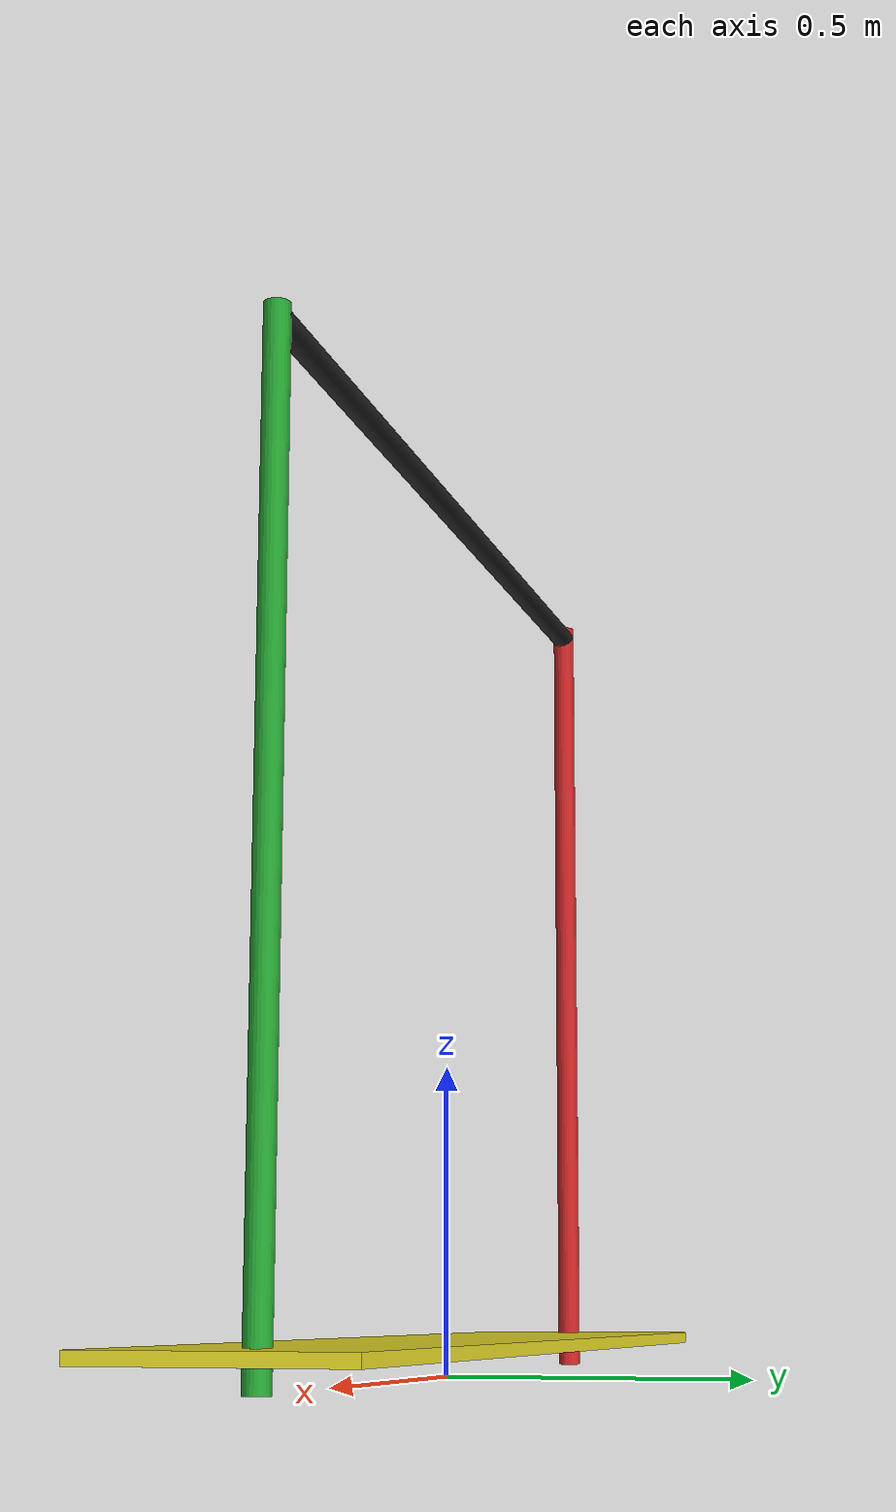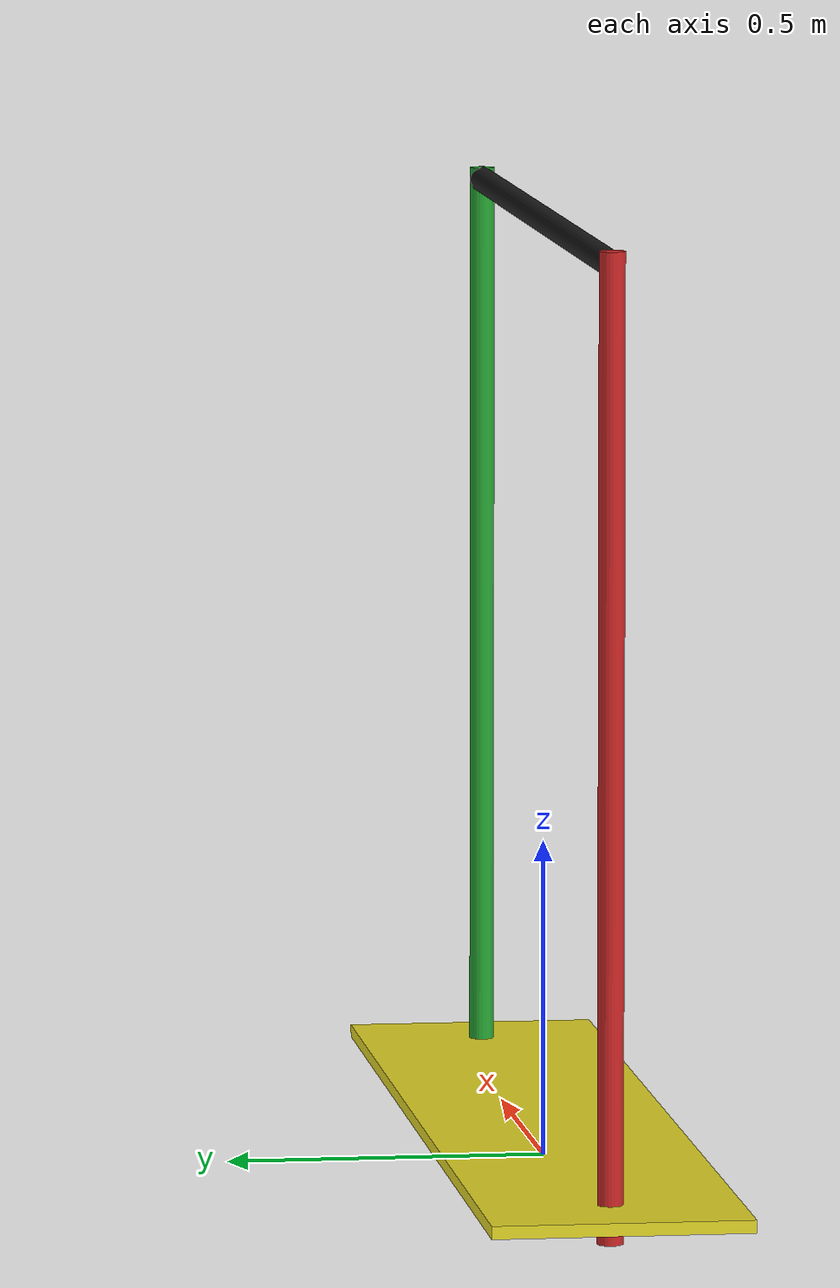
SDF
<?xml version="1.0" ?>

<sdf version="1.5">
  <model name="gate">
    <static>true</static>
    <link name="link">

      <collision name="left">
        <pose>-0.75 0 0.75 0 0 0</pose>
        <geometry>
          <cylinder>
            <radius>0.02</radius>
            <length>1.5</length>
          </cylinder>
        </geometry>
      </collision>

      <collision name="right">
        <pose>0.75 0 0.75 0 0 0</pose>
        <geometry>
          <cylinder>
            <radius>0.02</radius>
            <length>1.5</length>
          </cylinder>
        </geometry>
      </collision>

      <collision name="top">
        <pose>0 0 1.48 0 1.57 0</pose>
        <geometry>
          <cylinder>
            <radius>0.02</radius>
            <length>1.5</length>
          </cylinder>
        </geometry>
      </collision>

      <visual name="left">
        <cast_shadows>false</cast_shadows>
        <pose>-0.75 0 0.75 0 0 0</pose>
        <geometry>
          <cylinder>
            <radius>0.02</radius>
            <length>1.5</length>
          </cylinder>
        </geometry>
        <material>
          <script>
            <uri>file://media/materials/scripts/colors.material</uri>
            <name>SAUVC/Red</name>
          </script>
        </material>
      </visual>

      <visual name="right">
        <cast_shadows>false</cast_shadows>
        <pose>0.75 0 0.75 0 0 0</pose>
        <geometry>
          <cylinder>
            <radius>0.02</radius>
            <length>1.5</length>
          </cylinder>
        </geometry>
        <material>
          <script>
            <uri>file://media/materials/scripts/colors.material</uri>
            <name>SAUVC/Green</name>
          </script>
        </material>
      </visual>

      <visual name="top">
        <cast_shadows>false</cast_shadows>
        <pose>0 0 1.48 0 1.57 0</pose>
        <geometry>
          <cylinder>
            <radius>0.02</radius>
            <length>1.5</length>
          </cylinder>
        </geometry>
        <material>
          <script>
            <uri>file://media/materials/scripts/colors.material</uri>
            <name>SAUVC/Black</name>
          </script>
        </material>
      </visual>

      <visual name="bottom">
        <cast_shadows>false</cast_shadows>
        <pose>0 0 .05 0 0 0</pose>
        <geometry>
          <box>
            <size>1.8 .4 .02</size>
          </box>
        </geometry>
        <material>
          <script>
            <uri>file://media/materials/scripts/colors.material</uri>
            <name>SAUVC/Yellow</name>
          </script>
        </material>
      </visual>

    </link>
  </model>
</sdf>
